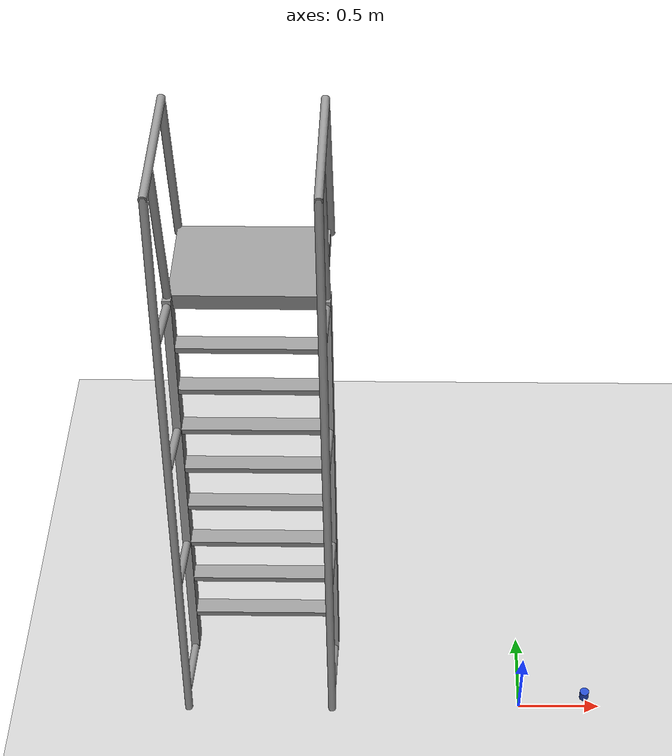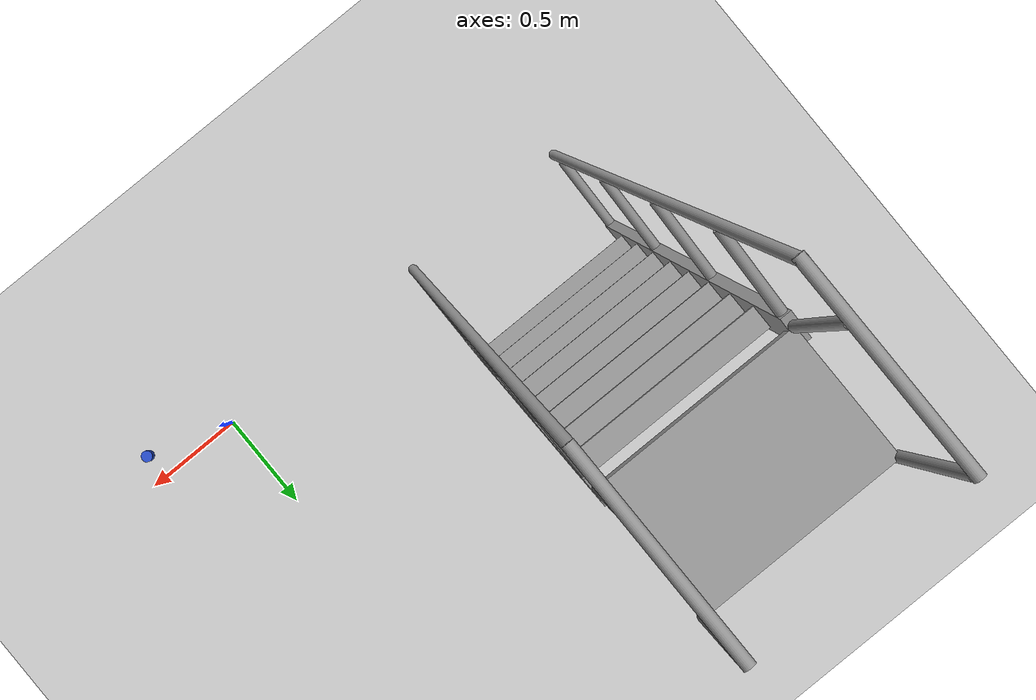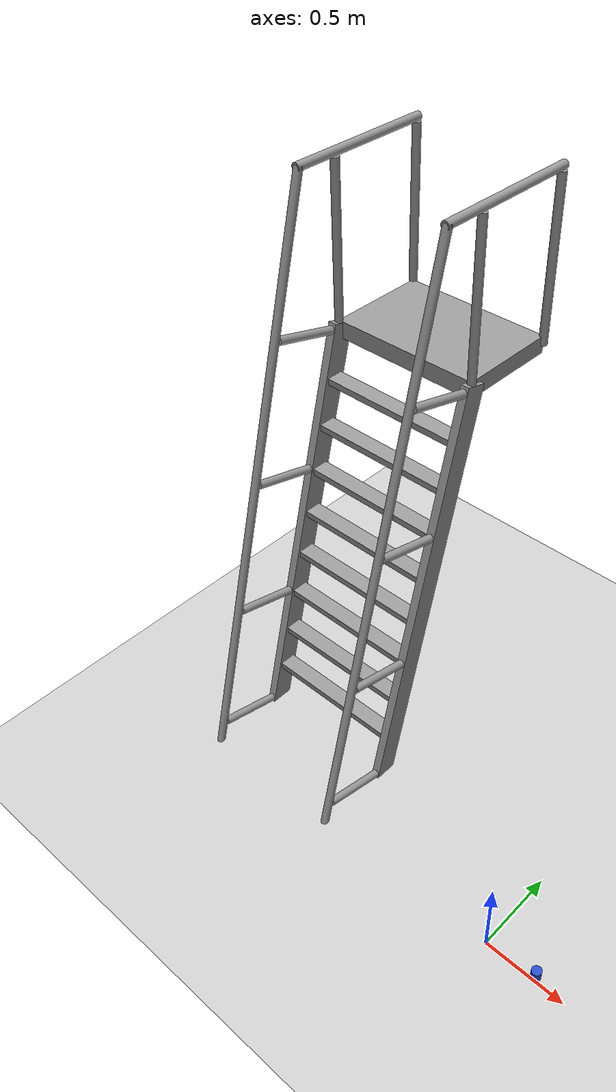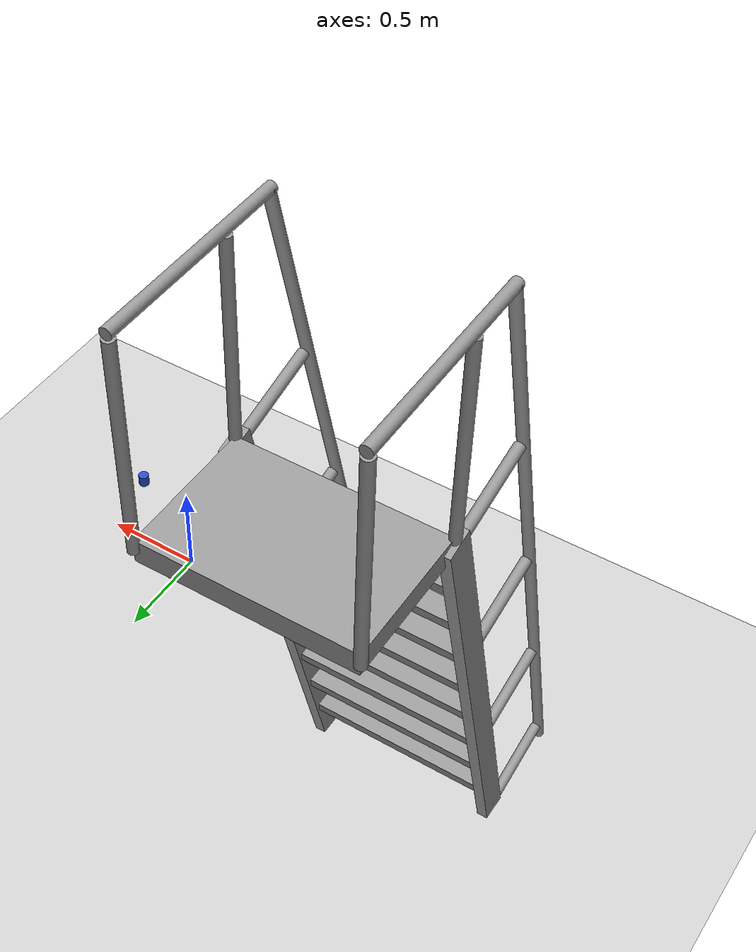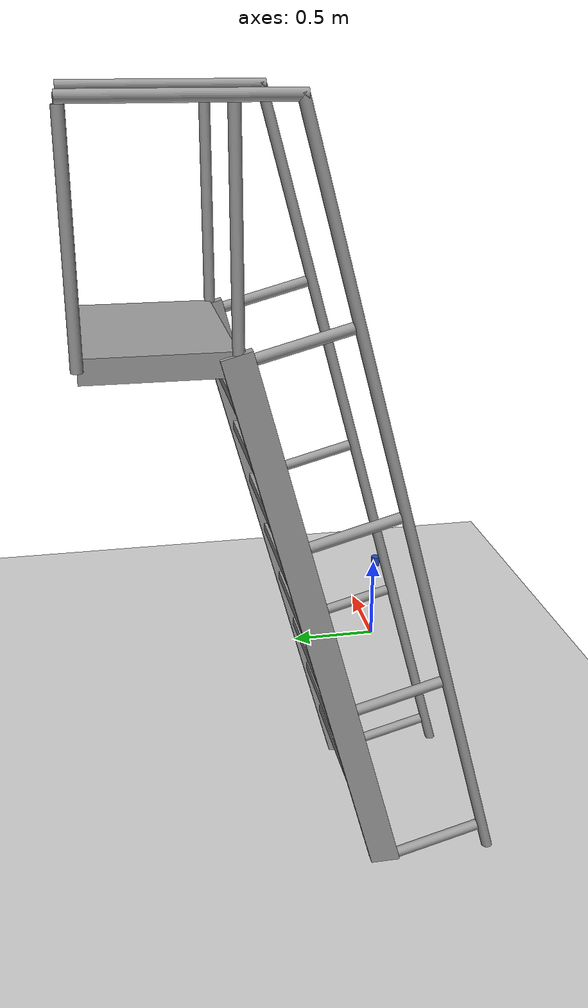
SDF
<sdf version="1.6">
 <world name="default">
  <model name="ground_plane">
   <static>1</static>
   <link name="link">
    <collision name="collision">
     <geometry><plane><normal>0 0 1</normal><size>100 100</size></plane></geometry>
     <surface><friction><ode><mu>100</mu><mu2>50</mu2></ode></friction></surface>
    </collision>
    <visual name="visual">
     <cast_shadows>0</cast_shadows>
     <geometry><plane><normal>0 0 1</normal><size>100 100</size></plane></geometry>
     <material>
      <script><uri>file://media/materials/scripts/gazebo.material</uri><name>Gazebo/Grey</name></script>
     </material>
    </visual>
   </link>
  </model>
  <model name="my_cylinder_blue">
   <static>0</static>
   <link name="link">
    <collision name="collision">
     <geometry><cylinder><radius>0.0274542</radius><length>0.0617533</length></cylinder></geometry>
     <surface><friction><ode><mu>100</mu><mu2>50</mu2></ode></friction></surface>
    </collision>
    <visual name="visual">
     <geometry><cylinder><radius>0.0274542</radius><length>0.0617533</length></cylinder></geometry>
     <material>
      <script><uri>file://media/materials/scripts/gazebo.material</uri><name>Gazebo/Blue</name></script>
     </material>
    </visual>
    <inertial>
     <inertia><ixx>1</ixx><ixy>0</ixy><ixz>0</ixz><iyy>1</iyy><iyz>0</iyz><izz>1</izz></inertia>
     <mass>1</mass>
    </inertial>
   </link>
   <pose>0.375761 -0.116102 0.319302 0.002757 -0.001671 -0.023023</pose>
  </model>
  <model name="ladder_75deg_2rails">
   <static>1</static>
   <link name="step0">
    <pose>0 0.071453 0.266667 0 -0 0</pose>
    <inertial>
     <mass>9.75482</mass>
     <inertia>
      <ixx>0.00957124</ixx>
      <iyy>0.65963</iyy>
      <izz>0.666842</izz>
      <ixy>0</ixy>
      <ixz>0</ixz>
      <iyz>0</iyz>
     </inertia>
    </inertial>
    <collision name="collision"><geometry><box><size>0.9 0.1016 0.0381</size></box></geometry></collision>
    <visual name="visual">
     <geometry><box><size>0.9 0.1016 0.0381</size></box></geometry>
     <material>
      <script><uri>file://media/materials/scripts/gazebo.material</uri><name>Gazebo/Grey</name></script>
     </material>
    </visual>
   </link>
   <link name="step1">
    <pose>0 0.142906 0.533333 0 -0 0</pose>
    <inertial>
     <mass>9.75482</mass>
     <inertia>
      <ixx>0.00957124</ixx>
      <iyy>0.65963</iyy>
      <izz>0.666842</izz>
      <ixy>0</ixy>
      <ixz>0</ixz>
      <iyz>0</iyz>
     </inertia>
    </inertial>
    <collision name="collision"><geometry><box><size>0.9 0.1016 0.0381</size></box></geometry></collision>
    <visual name="visual">
     <geometry><box><size>0.9 0.1016 0.0381</size></box></geometry>
     <material>
      <script><uri>file://media/materials/scripts/gazebo.material</uri><name>Gazebo/Grey</name></script>
     </material>
    </visual>
   </link>
   <link name="step2">
    <pose>0 0.214359 0.8 0 -0 0</pose>
    <inertial>
     <mass>9.75482</mass>
     <inertia>
      <ixx>0.00957124</ixx>
      <iyy>0.65963</iyy>
      <izz>0.666842</izz>
      <ixy>0</ixy>
      <ixz>0</ixz>
      <iyz>0</iyz>
     </inertia>
    </inertial>
    <collision name="collision"><geometry><box><size>0.9 0.1016 0.0381</size></box></geometry></collision>
    <visual name="visual">
     <geometry><box><size>0.9 0.1016 0.0381</size></box></geometry>
     <material>
      <script><uri>file://media/materials/scripts/gazebo.material</uri><name>Gazebo/Grey</name></script>
     </material>
    </visual>
   </link>
   <link name="step3">
    <pose>0 0.285812 1.06667 0 -0 0</pose>
    <inertial>
     <mass>9.75482</mass>
     <inertia>
      <ixx>0.00957124</ixx>
      <iyy>0.65963</iyy>
      <izz>0.666842</izz>
      <ixy>0</ixy>
      <ixz>0</ixz>
      <iyz>0</iyz>
     </inertia>
    </inertial>
    <collision name="collision"><geometry><box><size>0.9 0.1016 0.0381</size></box></geometry></collision>
    <visual name="visual">
     <geometry><box><size>0.9 0.1016 0.0381</size></box></geometry>
     <material>
      <script><uri>file://media/materials/scripts/gazebo.material</uri><name>Gazebo/Grey</name></script>
     </material>
    </visual>
   </link>
   <link name="step4">
    <pose>0 0.357266 1.33333 0 -0 0</pose>
    <inertial>
     <mass>9.75482</mass>
     <inertia>
      <ixx>0.00957124</ixx>
      <iyy>0.65963</iyy>
      <izz>0.666842</izz>
      <ixy>0</ixy>
      <ixz>0</ixz>
      <iyz>0</iyz>
     </inertia>
    </inertial>
    <collision name="collision"><geometry><box><size>0.9 0.1016 0.0381</size></box></geometry></collision>
    <visual name="visual">
     <geometry><box><size>0.9 0.1016 0.0381</size></box></geometry>
     <material>
      <script><uri>file://media/materials/scripts/gazebo.material</uri><name>Gazebo/Grey</name></script>
     </material>
    </visual>
   </link>
   <link name="step5">
    <pose>0 0.428719 1.6 0 -0 0</pose>
    <inertial>
     <mass>9.75482</mass>
     <inertia>
      <ixx>0.00957124</ixx>
      <iyy>0.65963</iyy>
      <izz>0.666842</izz>
      <ixy>0</ixy>
      <ixz>0</ixz>
      <iyz>0</iyz>
     </inertia>
    </inertial>
    <collision name="collision"><geometry><box><size>0.9 0.1016 0.0381</size></box></geometry></collision>
    <visual name="visual">
     <geometry><box><size>0.9 0.1016 0.0381</size></box></geometry>
     <material>
      <script><uri>file://media/materials/scripts/gazebo.material</uri><name>Gazebo/Grey</name></script>
     </material>
    </visual>
   </link>
   <link name="step6">
    <pose>0 0.500172 1.86667 0 -0 0</pose>
    <inertial>
     <mass>9.75482</mass>
     <inertia>
      <ixx>0.00957124</ixx>
      <iyy>0.65963</iyy>
      <izz>0.666842</izz>
      <ixy>0</ixy>
      <ixz>0</ixz>
      <iyz>0</iyz>
     </inertia>
    </inertial>
    <collision name="collision"><geometry><box><size>0.9 0.1016 0.0381</size></box></geometry></collision>
    <visual name="visual">
     <geometry><box><size>0.9 0.1016 0.0381</size></box></geometry>
     <material>
      <script><uri>file://media/materials/scripts/gazebo.material</uri><name>Gazebo/Grey</name></script>
     </material>
    </visual>
   </link>
   <link name="step7">
    <pose>0 0.571625 2.13333 0 -0 0</pose>
    <inertial>
     <mass>9.75482</mass>
     <inertia>
      <ixx>0.00957124</ixx>
      <iyy>0.65963</iyy>
      <izz>0.666842</izz>
      <ixy>0</ixy>
      <ixz>0</ixz>
      <iyz>0</iyz>
     </inertia>
    </inertial>
    <collision name="collision"><geometry><box><size>0.9 0.1016 0.0381</size></box></geometry></collision>
    <visual name="visual">
     <geometry><box><size>0.9 0.1016 0.0381</size></box></geometry>
     <material>
      <script><uri>file://media/materials/scripts/gazebo.material</uri><name>Gazebo/Grey</name></script>
     </material>
    </visual>
   </link>
   <link name="landing">
    <pose>0 0.943078 2.4 0 -0 0</pose>
    <inertial>
     <mass>57.6072</mass>
     <inertia><ixx>1.73518</ixx><iyy>3.89545</iyy><izz>5.6167</izz><ixy>0</ixy><ixz>0</ixz><iyz>0</iyz></inertia>
    </inertial>
    <collision name="collision"><geometry><box><size>0.9 0.6 0.1016</size></box></geometry></collision>
    <visual name="visual">
     <geometry><box><size>0.9 0.6 0.1016</size></box></geometry>
     <material>
      <script><uri>file://media/materials/scripts/gazebo.material</uri><name>Gazebo/Grey</name></script>
     </material>
    </visual>
   </link>
   <link name="left_side_wall">
    <pose>-0.45 0.321539 1.2 1.309 -0 0</pose>
    <collision name="collision"><geometry><box><size>0.0508 2.56466 0.13</size></box></geometry></collision>
    <visual name="visual">
     <geometry><box><size>0.0508 2.56466 0.13</size></box></geometry>
     <material>
      <script><uri>file://media/materials/scripts/gazebo.material</uri><name>Gazebo/Grey</name></script>
     </material>
    </visual>
   </link>
   <link name="right_side_wall">
    <pose>0.45 0.321539 1.2 1.309 -0 0</pose>
    <collision name="collision"><geometry><box><size>0.0508 2.56466 0.13</size></box></geometry></collision>
    <visual name="visual">
     <geometry><box><size>0.0508 2.56466 0.13</size></box></geometry>
     <material>
      <script><uri>file://media/materials/scripts/gazebo.material</uri><name>Gazebo/Grey</name></script>
     </material>
    </visual>
   </link>
   <link name="left_railing_long">
    <pose>-0.45 -0.053461 1.66651 -0.261799 0 0</pose>
    <collision name="collision">
     <geometry><cylinder><radius>0.02413</radius><length>3.51529</length></cylinder></geometry>
    </collision>
    <visual name="visual">
     <geometry><cylinder><radius>0.02413</radius><length>3.51529</length></cylinder></geometry>
     <material>
      <script><uri>file://media/materials/scripts/gazebo.material</uri><name>Gazebo/Grey</name></script>
     </material>
    </visual>
   </link>
   <link name="left_railing_upright0">
    <pose>-0.45 -0.210089 0.056293 1.309 -0 0</pose>
    <collision name="collision">
     <geometry><cylinder><radius>0.02413</radius><length>0.482963</length></cylinder></geometry>
    </collision>
    <visual name="visual">
     <geometry><cylinder><radius>0.02413</radius><length>0.482963</length></cylinder></geometry>
     <material>
      <script><uri>file://media/materials/scripts/gazebo.material</uri><name>Gazebo/Grey</name></script>
     </material>
    </visual>
   </link>
   <link name="left_railing_upright1">
    <pose>-0.45 0.00427 0.856293 1.309 -0 0</pose>
    <collision name="collision">
     <geometry><cylinder><radius>0.02413</radius><length>0.482963</length></cylinder></geometry>
    </collision>
    <visual name="visual">
     <geometry><cylinder><radius>0.02413</radius><length>0.482963</length></cylinder></geometry>
     <material>
      <script><uri>file://media/materials/scripts/gazebo.material</uri><name>Gazebo/Grey</name></script>
     </material>
    </visual>
   </link>
   <link name="left_railing_upright2">
    <pose>-0.45 0.21863 1.65629 1.309 -0 0</pose>
    <collision name="collision">
     <geometry><cylinder><radius>0.02413</radius><length>0.482963</length></cylinder></geometry>
    </collision>
    <visual name="visual">
     <geometry><cylinder><radius>0.02413</radius><length>0.482963</length></cylinder></geometry>
     <material>
      <script><uri>file://media/materials/scripts/gazebo.material</uri><name>Gazebo/Grey</name></script>
     </material>
    </visual>
   </link>
   <link name="left_railing_upright3">
    <pose>-0.45 0.432989 2.45629 1.309 -0 0</pose>
    <collision name="collision">
     <geometry><cylinder><radius>0.02413</radius><length>0.482963</length></cylinder></geometry>
    </collision>
    <visual name="visual">
     <geometry><cylinder><radius>0.02413</radius><length>0.482963</length></cylinder></geometry>
     <material>
      <script><uri>file://media/materials/scripts/gazebo.material</uri><name>Gazebo/Grey</name></script>
     </material>
    </visual>
   </link>
   <link name="left_railing_landing_top">
    <pose>-0.45 0.818078 3.35714 1.5708 -0 0</pose>
    <collision name="collision">
     <geometry><cylinder><radius>0.02413</radius><length>0.87413</length></cylinder></geometry>
    </collision>
    <visual name="visual">
     <geometry><cylinder><radius>0.02413</radius><length>0.87413</length></cylinder></geometry>
     <material>
      <script><uri>file://media/materials/scripts/gazebo.material</uri><name>Gazebo/Grey</name></script>
     </material>
    </visual>
   </link>
   <link name="left_railing_landing_upright_0">
    <pose>-0.45 0.643078 2.86651 0 -0 0</pose>
    <collision name="collision">
     <geometry><cylinder><radius>0.02413</radius><length>0.933013</length></cylinder></geometry>
    </collision>
    <visual name="visual">
     <geometry><cylinder><radius>0.02413</radius><length>0.933013</length></cylinder></geometry>
     <material>
      <script><uri>file://media/materials/scripts/gazebo.material</uri><name>Gazebo/Grey</name></script>
     </material>
    </visual>
   </link>
   <link name="left_railing_landing_upright_1">
    <pose>-0.45 1.24308 2.86651 0 -0 0</pose>
    <collision name="collision">
     <geometry><cylinder><radius>0.02413</radius><length>0.933013</length></cylinder></geometry>
    </collision>
    <visual name="visual">
     <geometry><cylinder><radius>0.02413</radius><length>0.933013</length></cylinder></geometry>
     <material>
      <script><uri>file://media/materials/scripts/gazebo.material</uri><name>Gazebo/Grey</name></script>
     </material>
    </visual>
   </link>
   <link name="right_railing_long">
    <pose>0.45 -0.053461 1.66651 -0.261799 0 0</pose>
    <collision name="collision">
     <geometry><cylinder><radius>0.02413</radius><length>3.51529</length></cylinder></geometry>
    </collision>
    <visual name="visual">
     <geometry><cylinder><radius>0.02413</radius><length>3.51529</length></cylinder></geometry>
     <material>
      <script><uri>file://media/materials/scripts/gazebo.material</uri><name>Gazebo/Grey</name></script>
     </material>
    </visual>
   </link>
   <link name="right_railing_upright0">
    <pose>0.45 -0.210089 0.056293 1.309 -0 0</pose>
    <collision name="collision">
     <geometry><cylinder><radius>0.02413</radius><length>0.482963</length></cylinder></geometry>
    </collision>
    <visual name="visual">
     <geometry><cylinder><radius>0.02413</radius><length>0.482963</length></cylinder></geometry>
     <material>
      <script><uri>file://media/materials/scripts/gazebo.material</uri><name>Gazebo/Grey</name></script>
     </material>
    </visual>
   </link>
   <link name="right_railing_upright1">
    <pose>0.45 0.00427 0.856293 1.309 -0 0</pose>
    <collision name="collision">
     <geometry><cylinder><radius>0.02413</radius><length>0.482963</length></cylinder></geometry>
    </collision>
    <visual name="visual">
     <geometry><cylinder><radius>0.02413</radius><length>0.482963</length></cylinder></geometry>
     <material>
      <script><uri>file://media/materials/scripts/gazebo.material</uri><name>Gazebo/Grey</name></script>
     </material>
    </visual>
   </link>
   <link name="right_railing_upright2">
    <pose>0.45 0.21863 1.65629 1.309 -0 0</pose>
    <collision name="collision">
     <geometry><cylinder><radius>0.02413</radius><length>0.482963</length></cylinder></geometry>
    </collision>
    <visual name="visual">
     <geometry><cylinder><radius>0.02413</radius><length>0.482963</length></cylinder></geometry>
     <material>
      <script><uri>file://media/materials/scripts/gazebo.material</uri><name>Gazebo/Grey</name></script>
     </material>
    </visual>
   </link>
   <link name="right_railing_upright3">
    <pose>0.45 0.432989 2.45629 1.309 -0 0</pose>
    <collision name="collision">
     <geometry><cylinder><radius>0.02413</radius><length>0.482963</length></cylinder></geometry>
    </collision>
    <visual name="visual">
     <geometry><cylinder><radius>0.02413</radius><length>0.482963</length></cylinder></geometry>
     <material>
      <script><uri>file://media/materials/scripts/gazebo.material</uri><name>Gazebo/Grey</name></script>
     </material>
    </visual>
   </link>
   <link name="right_railing_landing_top">
    <pose>0.45 0.818078 3.35714 1.5708 -0 0</pose>
    <collision name="collision">
     <geometry><cylinder><radius>0.02413</radius><length>0.87413</length></cylinder></geometry>
    </collision>
    <visual name="visual">
     <geometry><cylinder><radius>0.02413</radius><length>0.87413</length></cylinder></geometry>
     <material>
      <script><uri>file://media/materials/scripts/gazebo.material</uri><name>Gazebo/Grey</name></script>
     </material>
    </visual>
   </link>
   <link name="right_railing_landing_upright_0">
    <pose>0.45 0.643078 2.86651 0 -0 0</pose>
    <collision name="collision">
     <geometry><cylinder><radius>0.02413</radius><length>0.933013</length></cylinder></geometry>
    </collision>
    <visual name="visual">
     <geometry><cylinder><radius>0.02413</radius><length>0.933013</length></cylinder></geometry>
     <material>
      <script><uri>file://media/materials/scripts/gazebo.material</uri><name>Gazebo/Grey</name></script>
     </material>
    </visual>
   </link>
   <link name="right_railing_landing_upright_1">
    <pose>0.45 1.24308 2.86651 0 -0 0</pose>
    <collision name="collision">
     <geometry><cylinder><radius>0.02413</radius><length>0.933013</length></cylinder></geometry>
    </collision>
    <visual name="visual">
     <geometry><cylinder><radius>0.02413</radius><length>0.933013</length></cylinder></geometry>
     <material>
      <script><uri>file://media/materials/scripts/gazebo.material</uri><name>Gazebo/Grey</name></script>
     </material>
    </visual>
   </link>
   <pose>-1.62199 0.478584 0 0 -0 0</pose>
  </model>
 </world>
</sdf>
